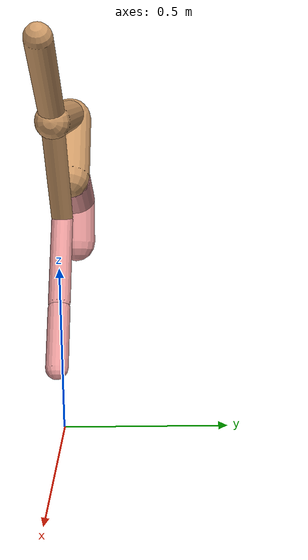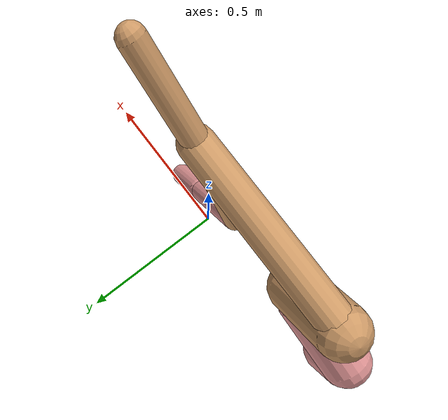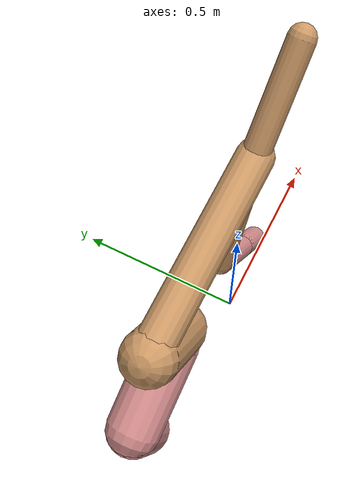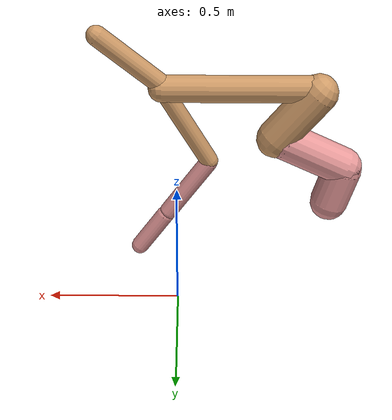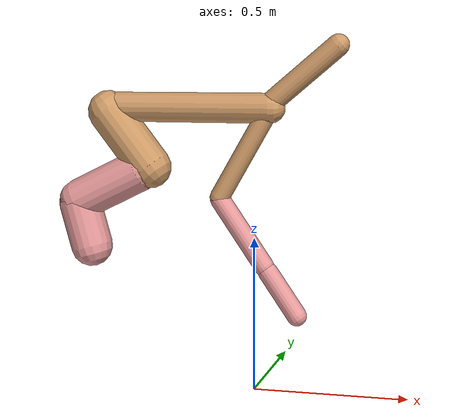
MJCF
<mujoco model="cheetah">
  <compiler angle="radian" coordinate="local" inertiafromgeom="true" settotalmass="14" />
  <default>
    <joint armature=".1" damping=".01" limited="true" solimplimit="0 .8 .03" solreflimit=".02 1" stiffness="8" />
    <geom conaffinity="0" condim="3" contype="1" friction="0.8 .1 .1" rgba="0.8 0.6 .4 1" solimp="0.0 0.8 0.01" solref="0.02 1" />
    <motor ctrllimited="true" ctrlrange="-1 1" />
  </default>
  <size nstack="300000" nuser_geom="1" />
  <option gravity="0 0 -9.81" timestep="0.01" />
  <worldbody>
    <body name="torso" pos="0.0 0.0 0.9172414072721446">
      <joint armature="0" axis="1 0 0" damping="0" limited="false" name="ignorex" pos="0 0 0" stiffness="0" type="slide" />
      <joint armature="0" axis="0 0 1" damping="0" limited="false" name="ignorez" pos="0 0 0" stiffness="0" type="slide" />
      <joint armature="0" axis="0 1 0" damping="0" limited="false" name="ignorey" pos="0 0 0" stiffness="0" type="hinge" />
      <geom fromto="-0.5 0.0 0.0 0.0503044718748481 0.0 0.0" name="torso" size="0.047995870765334805" type="capsule" />
      <geom axisangle="0 1 0 .87" name="head" pos="0.15030447187484808 0.0 0.1" size="0.03536926918305489 0.15" type="capsule" />

      <body name="bthigh" pos="-.5 0 0">
        <joint axis="0 1 0" damping="6" name="bthigh" pos="0 0 0" range="-.52 1.05" stiffness="240" type="hinge" />
        <geom axisangle="0 1 0 -3.8" name="bthigh" pos="0.0811413588803956 0.0 -0.10548376654451427" size="0.06874637288112113 0.11406952881506793" type="capsule" />
        <body name="bshin" pos="0.12228271776079119 0.0 -0.20096753308902854">
          <joint axis="0 1 0" damping="4.5" name="bshin" pos="0 0 0" range="-.785 .785" stiffness="180" type="hinge" />
          <geom axisangle="0 1 0 -2.03" name="bshin" pos="-0.11138097814664559 0.0 -0.055690489073322795" rgba="0.9 0.6 0.6 1" size="0.06874637288112113 0.11800296084317373" type="capsule" />
          <body name="bfoot" pos="-0.22276195629329118 0.0 -0.11138097814664559">
            <joint axis="0 1 0" damping="3" name="bfoot" pos="0 0 0" range="-.4 .785" stiffness="120" type="hinge" />
            <geom axisangle="0 1 0 -.27" name="bfoot" pos="0.02407539538909709 0.0 -0.07784377842474727" rgba="0.9 0.6 0.6 1" size="0.06874637288112113 0.07394852212838887" type="capsule" />
            <inertial mass="10" />
          </body>
        </body>
      </body>
      <body name="fthigh" pos="0.0503044718748481 0.0 0.0">
        <joint axis="0 1 0" damping="4.5" name="fthigh" pos="0 0 0" range="-1.5 0.8" stiffness="180" type="hinge" />
        <geom axisangle="0 1 0 .52" name="fthigh" pos="-0.08522845140053557 0.0 -0.1461059166866324" size="0.0322 0.16322291544685696" type="capsule" />
        <body name="fshin" pos="-0.17045690280107115 0.0 -0.2922118333732648">
          <joint axis="0 1 0" damping="3" name="fshin" pos="0 0 0" range="-1.2 1.1" stiffness="120" type="hinge" />
          <geom axisangle="0 1 0 -.6" name="fshin" pos="0.07910296646165248 0.0 -0.1095271843315188" rgba="0.9 0.6 0.6 1" size="0.0322 0.13008743637117923" type="capsule" />
          <body name="ffoot" pos="0.15820593292330495 0.0 -0.2190543686630376">
            <joint axis="0 1 0" damping="1.5" name="ffoot" pos="0 0 0" range="-3.1 -0.3" stiffness="60" type="hinge" />
            <geom axisangle="0 1 0 -.6" name="ffoot" pos="0.05360172155763889 0.0 -0.08338045575632717" rgba="0.9 0.6 0.6 1" size="0.0322 0.08590679760360893" type="capsule" />
            <inertial mass="10" />
          </body>
        </body>
      </body>
    </body>
  </worldbody>
  <actuator>
    <motor gear="120" joint="bthigh" name="bthigh" />
    <motor gear="90" joint="bshin" name="bshin" />
    <motor gear="60" joint="bfoot" name="bfoot" />
    <motor gear="120" joint="fthigh" name="fthigh" />
    <motor gear="60" joint="fshin" name="fshin" />
    <motor gear="30" joint="ffoot" name="ffoot" />
  </actuator>
</mujoco>
